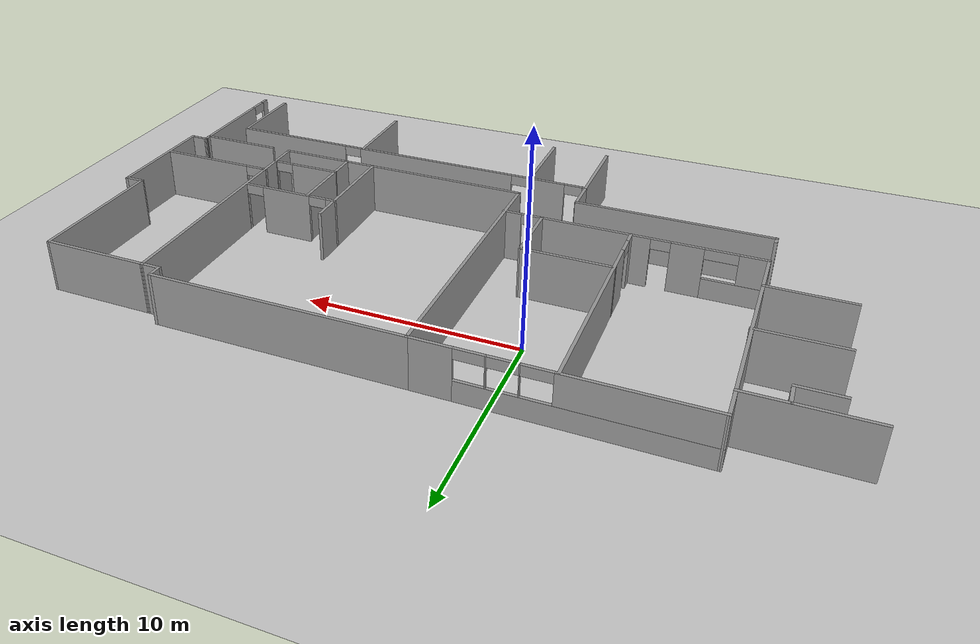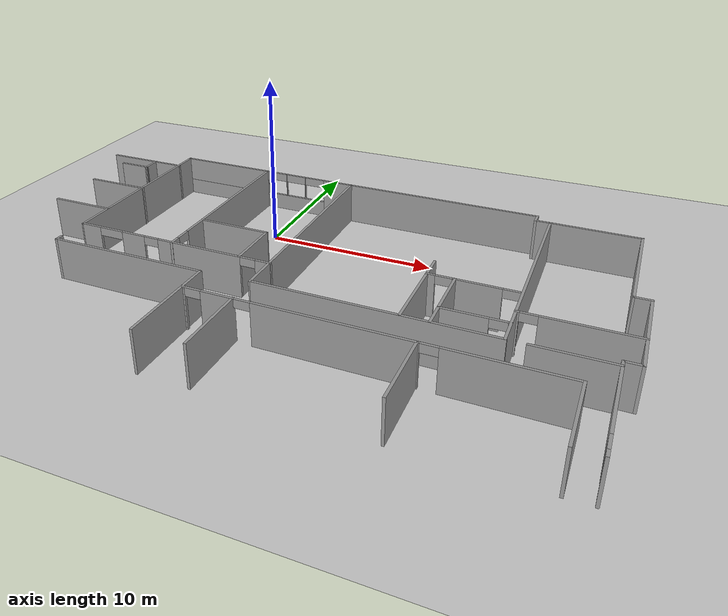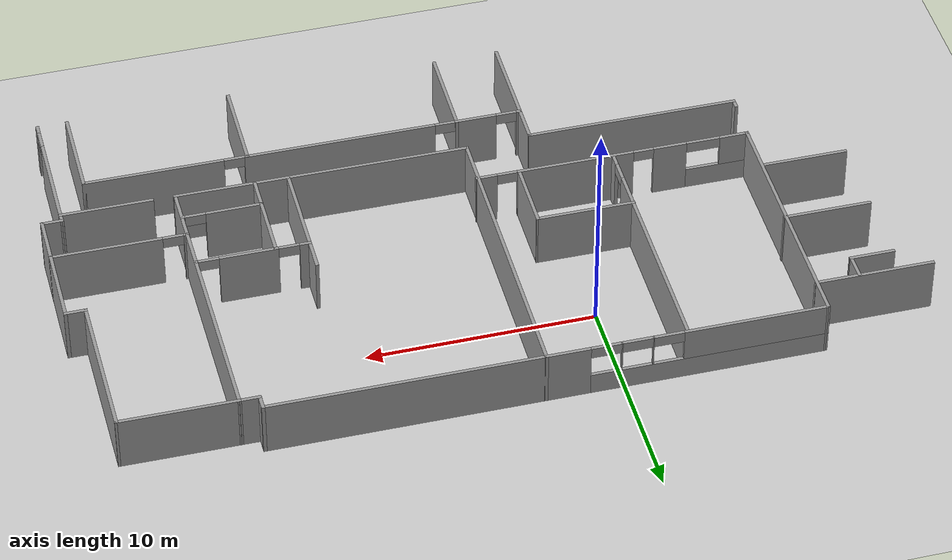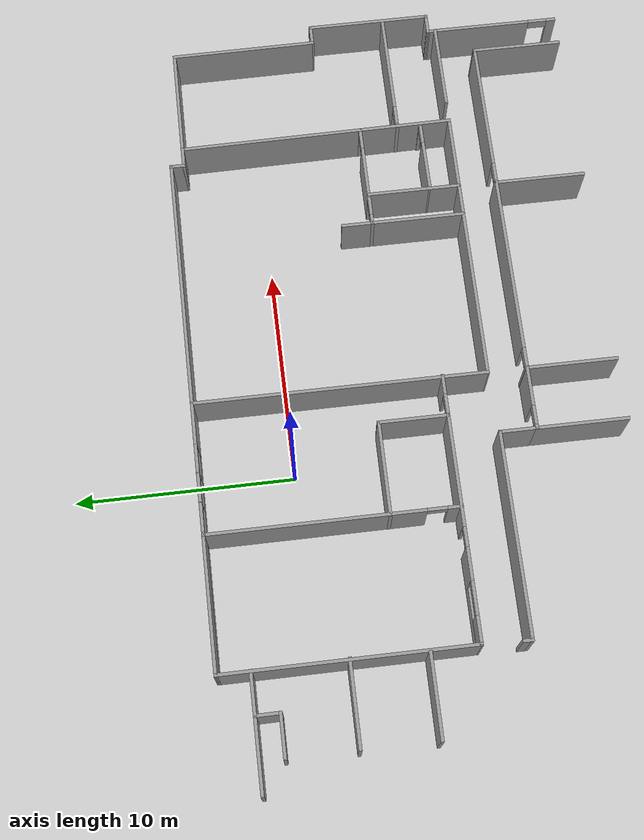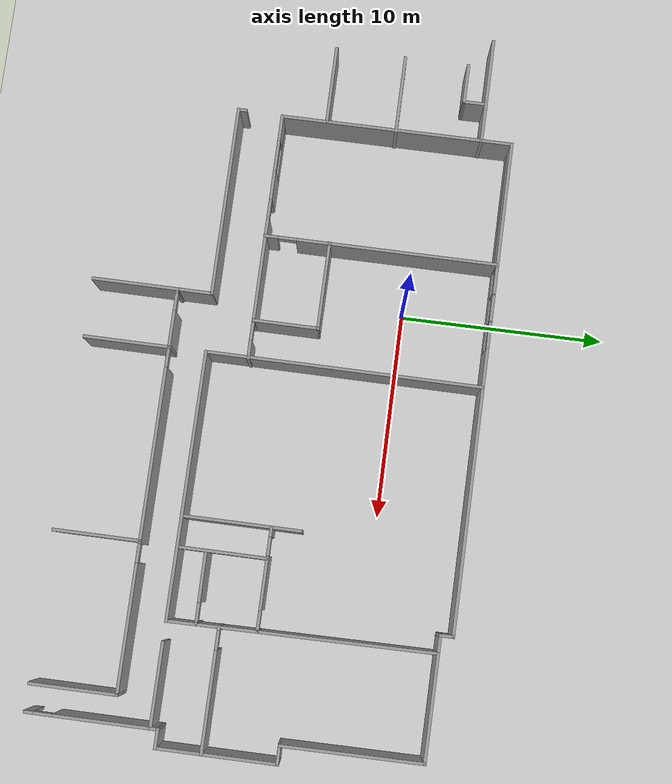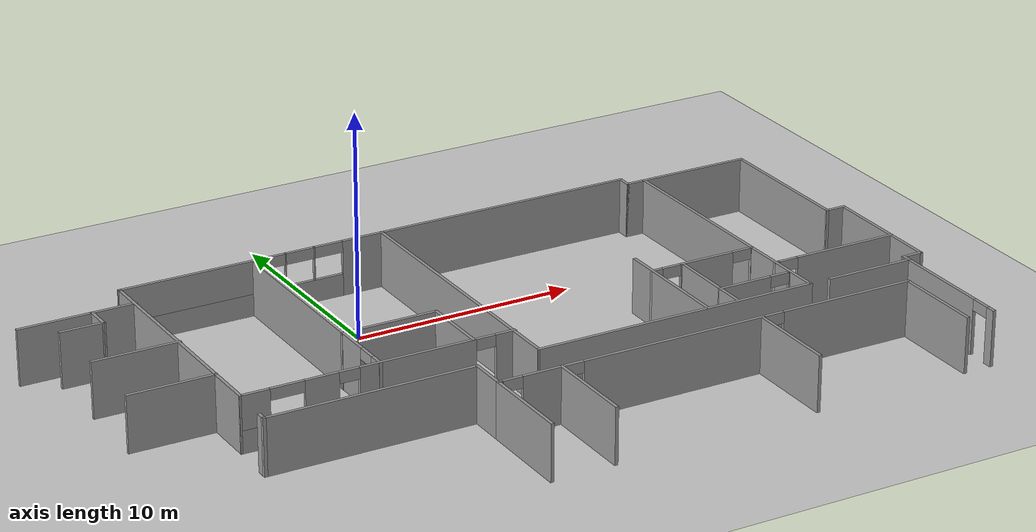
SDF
<sdf version="1.7">
 <world name="default">
  <model name="ground_plane">
   <static>1</static>
   <link name="link">
    <collision name="collision">
     <geometry><plane><normal>0 0 1</normal><size>100 100</size></plane></geometry>
     <surface><friction><ode><mu>100</mu><mu2>50</mu2></ode></friction></surface>
    </collision>
    <visual name="visual">
     <cast_shadows>0</cast_shadows>
     <geometry><plane><normal>0 0 1</normal><size>100 100</size></plane></geometry>
     <material>
      <script><uri>file://media/materials/scripts/gazebo.material</uri><name>Gazebo/Grey</name></script>
     </material>
    </visual>
   </link>
  </model>
  <model name="4th_floor_full">
   <pose>-18.2329 -5.23028 0 0 -0 3.13626</pose>
   <link name="Wall_1">
    <collision name="Wall_1_Collision">
     <geometry><box><size>13.5 0.15 2.5</size></box></geometry>
     <pose>0 0 1.25 0 -0 0</pose>
    </collision>
    <visual name="Wall_1_Visual">
     <pose>0 0 1.25 0 -0 0</pose>
     <geometry><box><size>13.5 0.15 2.5</size></box></geometry>
     <material>
      <script><uri>file://media/materials/scripts/gazebo.material</uri><name>Gazebo/Grey</name></script>
      <ambient>1 1 1 1</ambient>
     </material>
     <meta><layer>0</layer></meta>
    </visual>
    <pose>-21.539 -2.89994 0 0 -0 -1.5708</pose>
   </link>
   <link name="Wall_10">
    <pose>-15.5141 -3.90886 0 0 -0 -1.56844</pose>
    <visual name="Wall_10_Visual_0">
     <pose>-5.38184 0 1.25 0 -0 0</pose>
     <geometry><box><size>0.691437 0.15 2.5</size></box></geometry>
     <material>
      <script><uri>file://media/materials/scripts/gazebo.material</uri><name>Gazebo/Grey</name></script>
      <ambient>1 1 1 1</ambient>
     </material>
     <meta><layer>0</layer></meta>
    </visual>
    <collision name="Wall_10_Collision_0">
     <geometry><box><size>0.691437 0.15 2.5</size></box></geometry>
     <pose>-5.38184 0 1.25 0 -0 0</pose>
    </collision>
    <visual name="Wall_10_Visual_1">
     <pose>0.795718 0 1.25 0 -0 0</pose>
     <geometry><box><size>9.86368 0.15 2.5</size></box></geometry>
     <material>
      <script><uri>file://media/materials/scripts/gazebo.material</uri><name>Gazebo/Grey</name></script>
      <ambient>1 1 1 1</ambient>
     </material>
     <meta><layer>0</layer></meta>
    </visual>
    <collision name="Wall_10_Collision_1">
     <geometry><box><size>9.86368 0.15 2.5</size></box></geometry>
     <pose>0.795718 0 1.25 0 -0 0</pose>
    </collision>
    <visual name="Wall_10_Visual_2">
     <pose>-4.58612 0 2.25 0 -0 0</pose>
     <geometry><box><size>0.9 0.15 0.5</size></box></geometry>
     <material>
      <script><uri>file://media/materials/scripts/gazebo.material</uri><name>Gazebo/Grey</name></script>
      <ambient>1 1 1 1</ambient>
     </material>
     <meta><layer>0</layer></meta>
    </visual>
    <collision name="Wall_10_Collision_2">
     <geometry><box><size>0.9 0.15 0.5</size></box></geometry>
     <pose>-4.58612 0 2.25 0 -0 0</pose>
    </collision>
   </link>
   <link name="Wall_115">
    <pose>-39.3473 6.73743 0 0 -0 1.5708</pose>
    <visual name="Wall_115_Visual_0">
     <pose>-0.669517 0 1.25 0 -0 0</pose>
     <geometry><box><size>4.66097 0.15 2.5</size></box></geometry>
     <material>
      <script><uri>file://media/materials/scripts/gazebo.material</uri><name>Gazebo/Grey</name></script>
      <ambient>1 1 1 1</ambient>
     </material>
     <meta><layer>0</layer></meta>
    </visual>
    <collision name="Wall_115_Collision_0">
     <geometry><box><size>4.66097 0.15 2.5</size></box></geometry>
     <pose>-0.669517 0 1.25 0 -0 0</pose>
    </collision>
    <visual name="Wall_115_Visual_1">
     <pose>2.78048 0 1.25 0 -0 0</pose>
     <geometry><box><size>0.439034 0.15 2.5</size></box></geometry>
     <material>
      <script><uri>file://media/materials/scripts/gazebo.material</uri><name>Gazebo/Grey</name></script>
      <ambient>1 1 1 1</ambient>
     </material>
     <meta><layer>0</layer></meta>
    </visual>
    <collision name="Wall_115_Collision_1">
     <geometry><box><size>0.439034 0.15 2.5</size></box></geometry>
     <pose>2.78048 0 1.25 0 -0 0</pose>
    </collision>
    <visual name="Wall_115_Visual_2">
     <pose>2.11097 0 2.25 0 -0 0</pose>
     <geometry><box><size>0.9 0.15 0.5</size></box></geometry>
     <material>
      <script><uri>file://media/materials/scripts/gazebo.material</uri><name>Gazebo/Grey</name></script>
      <ambient>1 1 1 1</ambient>
     </material>
     <meta><layer>0</layer></meta>
    </visual>
    <collision name="Wall_115_Collision_2">
     <geometry><box><size>0.9 0.15 0.5</size></box></geometry>
     <pose>2.11097 0 2.25 0 -0 0</pose>
    </collision>
   </link>
   <link name="Wall_133">
    <collision name="Wall_133_Collision">
     <geometry><box><size>4.25 0.15 2.5</size></box></geometry>
     <pose>0 0 1.25 0 -0 0</pose>
    </collision>
    <visual name="Wall_133_Visual">
     <pose>0 0 1.25 0 -0 0</pose>
     <geometry><box><size>4.25 0.15 2.5</size></box></geometry>
     <material>
      <script><uri>file://media/materials/scripts/gazebo.material</uri><name>Gazebo/Grey</name></script>
      <ambient>1 1 1 1</ambient>
     </material>
     <meta><layer>0</layer></meta>
    </visual>
    <pose>-38.0412 7.62065 0 0 -0 -1.5708</pose>
   </link>
   <link name="Wall_134">
    <pose>-28.3662 5.57065 0 0 -0 0</pose>
    <visual name="Wall_134_Visual_0">
     <pose>-6.64062 0 1.25 0 -0 0</pose>
     <geometry><box><size>6.21875 0.15 2.5</size></box></geometry>
     <material>
      <script><uri>file://media/materials/scripts/gazebo.material</uri><name>Gazebo/Grey</name></script>
      <ambient>1 1 1 1</ambient>
     </material>
     <meta><layer>0</layer></meta>
    </visual>
    <collision name="Wall_134_Collision_0">
     <geometry><box><size>6.21875 0.15 2.5</size></box></geometry>
     <pose>-6.64062 0 1.25 0 -0 0</pose>
    </collision>
    <visual name="Wall_134_Visual_1">
     <pose>1.60609 0 1.25 0 -0 0</pose>
     <geometry><box><size>8.47467 0.15 2.5</size></box></geometry>
     <material>
      <script><uri>file://media/materials/scripts/gazebo.material</uri><name>Gazebo/Grey</name></script>
      <ambient>1 1 1 1</ambient>
     </material>
     <meta><layer>0</layer></meta>
    </visual>
    <collision name="Wall_134_Collision_1">
     <geometry><box><size>8.47467 0.15 2.5</size></box></geometry>
     <pose>1.60609 0 1.25 0 -0 0</pose>
    </collision>
    <visual name="Wall_134_Visual_2">
     <pose>7.67435 0 1.25 0 -0 0</pose>
     <geometry><box><size>1.86184 0.15 2.5</size></box></geometry>
     <material>
      <script><uri>file://media/materials/scripts/gazebo.material</uri><name>Gazebo/Grey</name></script>
      <ambient>1 1 1 1</ambient>
     </material>
     <meta><layer>0</layer></meta>
    </visual>
    <collision name="Wall_134_Collision_2">
     <geometry><box><size>1.86184 0.15 2.5</size></box></geometry>
     <pose>7.67435 0 1.25 0 -0 0</pose>
    </collision>
    <visual name="Wall_134_Visual_3">
     <pose>9.62763 0 1.25 0 -0 0</pose>
     <geometry><box><size>0.244731 0.15 2.5</size></box></geometry>
     <material>
      <script><uri>file://media/materials/scripts/gazebo.material</uri><name>Gazebo/Grey</name></script>
      <ambient>1 1 1 1</ambient>
     </material>
     <meta><layer>0</layer></meta>
    </visual>
    <collision name="Wall_134_Collision_3">
     <geometry><box><size>0.244731 0.15 2.5</size></box></geometry>
     <pose>9.62763 0 1.25 0 -0 0</pose>
    </collision>
    <visual name="Wall_134_Visual_4">
     <pose>-3.08125 0 2.25 0 -0 0</pose>
     <geometry><box><size>0.9 0.15 0.5</size></box></geometry>
     <material>
      <script><uri>file://media/materials/scripts/gazebo.material</uri><name>Gazebo/Grey</name></script>
      <ambient>1 1 1 1</ambient>
     </material>
     <meta><layer>0</layer></meta>
    </visual>
    <collision name="Wall_134_Collision_4">
     <geometry><box><size>0.9 0.15 0.5</size></box></geometry>
     <pose>-3.08125 0 2.25 0 -0 0</pose>
    </collision>
    <visual name="Wall_134_Visual_5">
     <pose>6.29343 0 2.25 0 -0 0</pose>
     <geometry><box><size>0.9 0.15 0.5</size></box></geometry>
     <material>
      <script><uri>file://media/materials/scripts/gazebo.material</uri><name>Gazebo/Grey</name></script>
      <ambient>1 1 1 1</ambient>
     </material>
     <meta><layer>0</layer></meta>
    </visual>
    <collision name="Wall_134_Collision_5">
     <geometry><box><size>0.9 0.15 0.5</size></box></geometry>
     <pose>6.29343 0 2.25 0 -0 0</pose>
    </collision>
    <visual name="Wall_134_Visual_6">
     <pose>9.05527 0 2.25 0 -0 0</pose>
     <geometry><box><size>0.9 0.15 0.5</size></box></geometry>
     <material>
      <script><uri>file://media/materials/scripts/gazebo.material</uri><name>Gazebo/Grey</name></script>
      <ambient>1 1 1 1</ambient>
     </material>
     <meta><layer>0</layer></meta>
    </visual>
    <collision name="Wall_134_Collision_6">
     <geometry><box><size>0.9 0.15 0.5</size></box></geometry>
     <pose>9.05527 0 2.25 0 -0 0</pose>
    </collision>
   </link>
   <link name="Wall_135">
    <collision name="Wall_135_Collision">
     <geometry><box><size>4.25 0.15 2.5</size></box></geometry>
     <pose>0 0 1.25 0 -0 0</pose>
    </collision>
    <visual name="Wall_135_Visual">
     <pose>0 0 1.25 0 -0 0</pose>
     <geometry><box><size>4.25 0.15 2.5</size></box></geometry>
     <material>
      <script><uri>file://media/materials/scripts/gazebo.material</uri><name>Gazebo/Grey</name></script>
      <ambient>1 1 1 1</ambient>
     </material>
     <meta><layer>0</layer></meta>
    </visual>
    <pose>-18.6912 7.62065 0 0 -0 1.5708</pose>
   </link>
   <link name="Wall_137">
    <collision name="Wall_137_Collision">
     <geometry><box><size>4.25 0.15 2.5</size></box></geometry>
     <pose>0 0 1.25 0 -0 0</pose>
    </collision>
    <visual name="Wall_137_Visual">
     <pose>0 0 1.25 0 -0 0</pose>
     <geometry><box><size>4.25 0.15 2.5</size></box></geometry>
     <material>
      <script><uri>file://media/materials/scripts/gazebo.material</uri><name>Gazebo/Grey</name></script>
      <ambient>1 1 1 1</ambient>
     </material>
     <meta><layer>0</layer></meta>
    </visual>
    <pose>-30.8702 7.63814 0 0 -0 -1.5708</pose>
   </link>
   <link name="Wall_139">
    <collision name="Wall_139_Collision">
     <geometry><box><size>4.25 0.15 2.5</size></box></geometry>
     <pose>0 0 1.25 0 -0 0</pose>
    </collision>
    <visual name="Wall_139_Visual">
     <pose>0 0 1.25 0 -0 0</pose>
     <geometry><box><size>4.25 0.15 2.5</size></box></geometry>
     <material>
      <script><uri>file://media/materials/scripts/gazebo.material</uri><name>Gazebo/Grey</name></script>
      <ambient>1 1 1 1</ambient>
     </material>
     <meta><layer>0</layer></meta>
    </visual>
    <pose>-21.548 7.60316 0 0 -0 -1.5708</pose>
   </link>
   <link name="Wall_14">
    <collision name="Wall_14_Collision">
     <geometry><box><size>3.25 0.15 2.5</size></box></geometry>
     <pose>0 0 1.25 0 -0 0</pose>
    </collision>
    <visual name="Wall_14_Visual">
     <pose>0 0 1.25 0 -0 0</pose>
     <geometry><box><size>3.25 0.15 2.5</size></box></geometry>
     <material>
      <script><uri>file://media/materials/scripts/gazebo.material</uri><name>Gazebo/Grey</name></script>
      <ambient>1 1 1 1</ambient>
     </material>
     <meta><layer>0</layer></meta>
    </visual>
    <pose>-19.7261 0.162934 0 0 -0 -1.5708</pose>
   </link>
   <link name="Wall_15">
    <collision name="Wall_15_Collision">
     <geometry><box><size>4.37001 0.15 2.5</size></box></geometry>
     <pose>0 0 1.25 0 -0 0</pose>
    </collision>
    <visual name="Wall_15_Visual">
     <pose>0 0 1.25 0 -0 0</pose>
     <geometry><box><size>4.37001 0.15 2.5</size></box></geometry>
     <material>
      <script><uri>file://media/materials/scripts/gazebo.material</uri><name>Gazebo/Grey</name></script>
      <ambient>1 1 1 1</ambient>
     </material>
     <meta><layer>0</layer></meta>
    </visual>
    <pose>-17.6161 -1.39207 0 0 -0 -0.00237</pose>
   </link>
   <link name="Wall_151">
    <collision name="Wall_151_Collision">
     <geometry><box><size>0.5 0.15 2.5</size></box></geometry>
     <pose>0 0 1.25 0 -0 0</pose>
    </collision>
    <visual name="Wall_151_Visual">
     <pose>0 0 1.25 0 -0 0</pose>
     <geometry><box><size>0.5 0.15 2.5</size></box></geometry>
     <material>
      <script><uri>file://media/materials/scripts/gazebo.material</uri><name>Gazebo/Grey</name></script>
      <ambient>1 1 1 1</ambient>
     </material>
     <meta><layer>0</layer></meta>
    </visual>
    <pose>-9.41775 3.73129 0 0 -0 1.5708</pose>
   </link>
   <link name="Wall_153">
    <collision name="Wall_153_Collision">
     <geometry><box><size>9.4 0.15 2.5</size></box></geometry>
     <pose>0 0 1.25 0 -0 0</pose>
    </collision>
    <visual name="Wall_153_Visual">
     <pose>0 0 1.25 0 -0 0</pose>
     <geometry><box><size>9.4 0.15 2.5</size></box></geometry>
     <material>
      <script><uri>file://media/materials/scripts/gazebo.material</uri><name>Gazebo/Grey</name></script>
      <ambient>1 1 1 1</ambient>
     </material>
     <meta><layer>0</layer></meta>
    </visual>
    <pose>-14.0427 3.90629 0 0 -0 3.14159</pose>
   </link>
   <link name="Wall_155">
    <collision name="Wall_155_Collision">
     <geometry><box><size>1.8 0.15 2.5</size></box></geometry>
     <pose>0 0 1.25 0 -0 0</pose>
    </collision>
    <visual name="Wall_155_Visual">
     <pose>0 0 1.25 0 -0 0</pose>
     <geometry><box><size>1.8 0.15 2.5</size></box></geometry>
     <material>
      <script><uri>file://media/materials/scripts/gazebo.material</uri><name>Gazebo/Grey</name></script>
      <ambient>1 1 1 1</ambient>
     </material>
     <meta><layer>0</layer></meta>
    </visual>
    <pose>-18.6912 4.74565 0 0 -0 -1.5708</pose>
   </link>
   <link name="Wall_17">
    <collision name="Wall_17_Collision">
     <geometry><box><size>12 0.15 2.5</size></box></geometry>
     <pose>0 0 1.25 0 -0 0</pose>
    </collision>
    <visual name="Wall_17_Visual">
     <pose>0 0 1.25 0 -0 0</pose>
     <geometry><box><size>12 0.15 2.5</size></box></geometry>
     <material>
      <script><uri>file://media/materials/scripts/gazebo.material</uri><name>Gazebo/Grey</name></script>
      <ambient>1 1 1 1</ambient>
     </material>
     <meta><layer>0</layer></meta>
    </visual>
    <pose>-27.464 -9.57493 0 0 -0 3.14159</pose>
   </link>
   <link name="Wall_18">
    <collision name="Wall_18_Collision">
     <geometry><box><size>0.75 0.15 2.5</size></box></geometry>
     <pose>0 0 1.25 0 -0 0</pose>
    </collision>
    <visual name="Wall_18_Visual">
     <pose>0 0 1.25 0 -0 0</pose>
     <geometry><box><size>0.75 0.15 2.5</size></box></geometry>
     <material>
      <script><uri>file://media/materials/scripts/gazebo.material</uri><name>Gazebo/Grey</name></script>
      <ambient>1 1 1 1</ambient>
     </material>
     <meta><layer>0</layer></meta>
    </visual>
    <pose>-33.389 -9.27494 0 0 -0 1.5708</pose>
   </link>
   <link name="Wall_19">
    <collision name="Wall_19_Collision">
     <geometry><box><size>1 0.15 2.5</size></box></geometry>
     <pose>0 0 1.25 0 -0 0</pose>
    </collision>
    <visual name="Wall_19_Visual">
     <pose>0 0 1.25 0 -0 0</pose>
     <geometry><box><size>1 0.15 2.5</size></box></geometry>
     <material>
      <script><uri>file://media/materials/scripts/gazebo.material</uri><name>Gazebo/Grey</name></script>
      <ambient>1 1 1 1</ambient>
     </material>
     <meta><layer>0</layer></meta>
    </visual>
    <pose>-33.814 -8.97494 0 0 -0 3.14159</pose>
   </link>
   <link name="Wall_21">
    <collision name="Wall_21_Collision">
     <geometry><box><size>12.9196 0.15 2.5</size></box></geometry>
     <pose>0 0 1.25 0 -0 0</pose>
    </collision>
    <visual name="Wall_21_Visual">
     <pose>0 0 1.25 0 -0 0</pose>
     <geometry><box><size>12.9196 0.15 2.5</size></box></geometry>
     <material>
      <script><uri>file://media/materials/scripts/gazebo.material</uri><name>Gazebo/Grey</name></script>
      <ambient>1 1 1 1</ambient>
     </material>
     <meta><layer>0</layer></meta>
    </visual>
    <pose>-34.311 -2.5905 0 0 -0 1.58207</pose>
   </link>
   <link name="Wall_24">
    <collision name="Wall_24_Collision">
     <geometry><box><size>13 0.15 2.5</size></box></geometry>
     <pose>0 0 1.25 0 -0 0</pose>
    </collision>
    <visual name="Wall_24_Visual">
     <pose>0 0 1.25 0 -0 0</pose>
     <geometry><box><size>13 0.15 2.5</size></box></geometry>
     <material>
      <script><uri>file://media/materials/scripts/gazebo.material</uri><name>Gazebo/Grey</name></script>
      <ambient>1 1 1 1</ambient>
     </material>
     <meta><layer>0</layer></meta>
    </visual>
    <pose>-27.964 3.78836 0 0 -0 3.13952</pose>
   </link>
   <link name="Wall_26">
    <collision name="Wall_26_Collision">
     <geometry><box><size>5.75 0.15 2.5</size></box></geometry>
     <pose>0 0 1.25 0 -0 0</pose>
    </collision>
    <visual name="Wall_26_Visual">
     <pose>0 0 1.25 0 -0 0</pose>
     <geometry><box><size>5.75 0.15 2.5</size></box></geometry>
     <material>
      <script><uri>file://media/materials/scripts/gazebo.material</uri><name>Gazebo/Grey</name></script>
      <ambient>1 1 1 1</ambient>
     </material>
     <meta><layer>0</layer></meta>
    </visual>
    <pose>-29.4417 0.940476 0 0 -0 -1.5708</pose>
   </link>
   <link name="Wall_28">
    <pose>-31.8667 -0.478299 0 0 -0 3.14159</pose>
    <visual name="Wall_28_Visual_0">
     <pose>-2.24009 0 1.25 0 -0 0</pose>
     <geometry><box><size>0.519822 0.15 2.5</size></box></geometry>
     <material>
      <script><uri>file://media/materials/scripts/gazebo.material</uri><name>Gazebo/Grey</name></script>
      <ambient>1 1 1 1</ambient>
     </material>
     <meta><layer>0</layer></meta>
    </visual>
    <collision name="Wall_28_Collision_0">
     <geometry><box><size>0.519822 0.15 2.5</size></box></geometry>
     <pose>-2.24009 0 1.25 0 -0 0</pose>
    </collision>
    <visual name="Wall_28_Visual_1">
     <pose>0.200571 0 1.25 0 -0 0</pose>
     <geometry><box><size>2.5615 0.15 2.5</size></box></geometry>
     <material>
      <script><uri>file://media/materials/scripts/gazebo.material</uri><name>Gazebo/Grey</name></script>
      <ambient>1 1 1 1</ambient>
     </material>
     <meta><layer>0</layer></meta>
    </visual>
    <collision name="Wall_28_Collision_1">
     <geometry><box><size>2.5615 0.15 2.5</size></box></geometry>
     <pose>0.200571 0 1.25 0 -0 0</pose>
    </collision>
    <visual name="Wall_28_Visual_2">
     <pose>2.44066 0 1.25 0 -0 0</pose>
     <geometry><box><size>0.11868 0.15 2.5</size></box></geometry>
     <material>
      <script><uri>file://media/materials/scripts/gazebo.material</uri><name>Gazebo/Grey</name></script>
      <ambient>1 1 1 1</ambient>
     </material>
     <meta><layer>0</layer></meta>
    </visual>
    <collision name="Wall_28_Collision_2">
     <geometry><box><size>0.11868 0.15 2.5</size></box></geometry>
     <pose>2.44066 0 1.25 0 -0 0</pose>
    </collision>
    <visual name="Wall_28_Visual_3">
     <pose>-1.53018 0 2.25 0 -0 0</pose>
     <geometry><box><size>0.9 0.15 0.5</size></box></geometry>
     <material>
      <script><uri>file://media/materials/scripts/gazebo.material</uri><name>Gazebo/Grey</name></script>
      <ambient>1 1 1 1</ambient>
     </material>
     <meta><layer>0</layer></meta>
    </visual>
    <collision name="Wall_28_Collision_3">
     <geometry><box><size>0.9 0.15 0.5</size></box></geometry>
     <pose>-1.53018 0 2.25 0 -0 0</pose>
    </collision>
    <visual name="Wall_28_Visual_4">
     <pose>1.93132 0 2.25 0 -0 0</pose>
     <geometry><box><size>0.9 0.15 0.5</size></box></geometry>
     <material>
      <script><uri>file://media/materials/scripts/gazebo.material</uri><name>Gazebo/Grey</name></script>
      <ambient>1 1 1 1</ambient>
     </material>
     <meta><layer>0</layer></meta>
    </visual>
    <collision name="Wall_28_Collision_4">
     <geometry><box><size>0.9 0.15 0.5</size></box></geometry>
     <pose>1.93132 0 2.25 0 -0 0</pose>
    </collision>
   </link>
   <link name="Wall_3">
    <pose>-15.489 -9.57493 0 0 -0 0</pose>
    <visual name="Wall_3_Visual_0">
     <pose>-5.13864 0 1.25 0 -0 0</pose>
     <geometry><box><size>1.97271 0.15 2.5</size></box></geometry>
     <material>
      <script><uri>file://media/materials/scripts/gazebo.material</uri><name>Gazebo/Grey</name></script>
      <ambient>1 1 1 1</ambient>
     </material>
     <meta><layer>0</layer></meta>
    </visual>
    <collision name="Wall_3_Collision_0">
     <geometry><box><size>1.97271 0.15 2.5</size></box></geometry>
     <pose>-5.13864 0 1.25 0 -0 0</pose>
    </collision>
    <visual name="Wall_3_Visual_1">
     <pose>0.986356 0 0.5 0 -0 0</pose>
     <geometry><box><size>10.2773 0.15 1</size></box></geometry>
     <material>
      <script><uri>file://media/materials/scripts/gazebo.material</uri><name>Gazebo/Grey</name></script>
      <ambient>1 1 1 1</ambient>
     </material>
     <meta><layer>0</layer></meta>
    </visual>
    <collision name="Wall_3_Collision_1">
     <geometry><box><size>10.2773 0.15 1</size></box></geometry>
     <pose>0.986356 0 0.5 0 -0 0</pose>
    </collision>
    <visual name="Wall_3_Visual_2">
     <pose>-2.82748 0 1.75 0 -0 0</pose>
     <geometry><box><size>0.049615 0.15 1.5</size></box></geometry>
     <material>
      <script><uri>file://media/materials/scripts/gazebo.material</uri><name>Gazebo/Grey</name></script>
      <ambient>1 1 1 1</ambient>
     </material>
     <meta><layer>0</layer></meta>
    </visual>
    <collision name="Wall_3_Collision_2">
     <geometry><box><size>0.049615 0.15 1.5</size></box></geometry>
     <pose>-2.82748 0 1.75 0 -0 0</pose>
    </collision>
    <visual name="Wall_3_Visual_3">
     <pose>-1.48163 0 1.75 0 -0 0</pose>
     <geometry><box><size>0.042094 0.15 1.5</size></box></geometry>
     <material>
      <script><uri>file://media/materials/scripts/gazebo.material</uri><name>Gazebo/Grey</name></script>
      <ambient>1 1 1 1</ambient>
     </material>
     <meta><layer>0</layer></meta>
    </visual>
    <collision name="Wall_3_Collision_3">
     <geometry><box><size>0.042094 0.15 1.5</size></box></geometry>
     <pose>-1.48163 0 1.75 0 -0 0</pose>
    </collision>
    <visual name="Wall_3_Visual_4">
     <pose>2.98221 0 1.75 0 -0 0</pose>
     <geometry><box><size>6.28558 0.15 1.5</size></box></geometry>
     <material>
      <script><uri>file://media/materials/scripts/gazebo.material</uri><name>Gazebo/Grey</name></script>
      <ambient>1 1 1 1</ambient>
     </material>
     <meta><layer>0</layer></meta>
    </visual>
    <collision name="Wall_3_Collision_4">
     <geometry><box><size>6.28558 0.15 1.5</size></box></geometry>
     <pose>2.98221 0 1.75 0 -0 0</pose>
    </collision>
    <visual name="Wall_3_Visual_5">
     <pose>-3.50229 0 2.25 0 -0 0</pose>
     <geometry><box><size>1.3 0.15 0.5</size></box></geometry>
     <material>
      <script><uri>file://media/materials/scripts/gazebo.material</uri><name>Gazebo/Grey</name></script>
      <ambient>1 1 1 1</ambient>
     </material>
     <meta><layer>0</layer></meta>
    </visual>
    <collision name="Wall_3_Collision_5">
     <geometry><box><size>1.3 0.15 0.5</size></box></geometry>
     <pose>-3.50229 0 2.25 0 -0 0</pose>
    </collision>
    <visual name="Wall_3_Visual_6">
     <pose>-2.15267 0 2.25 0 -0 0</pose>
     <geometry><box><size>1.3 0.15 0.5</size></box></geometry>
     <material>
      <script><uri>file://media/materials/scripts/gazebo.material</uri><name>Gazebo/Grey</name></script>
      <ambient>1 1 1 1</ambient>
     </material>
     <meta><layer>0</layer></meta>
    </visual>
    <collision name="Wall_3_Collision_6">
     <geometry><box><size>1.3 0.15 0.5</size></box></geometry>
     <pose>-2.15267 0 2.25 0 -0 0</pose>
    </collision>
    <visual name="Wall_3_Visual_7">
     <pose>-0.810579 0 2.25 0 -0 0</pose>
     <geometry><box><size>1.3 0.15 0.5</size></box></geometry>
     <material>
      <script><uri>file://media/materials/scripts/gazebo.material</uri><name>Gazebo/Grey</name></script>
      <ambient>1 1 1 1</ambient>
     </material>
     <meta><layer>0</layer></meta>
    </visual>
    <collision name="Wall_3_Collision_7">
     <geometry><box><size>1.3 0.15 0.5</size></box></geometry>
     <pose>-0.810579 0 2.25 0 -0 0</pose>
    </collision>
   </link>
   <link name="Wall_31">
    <collision name="Wall_31_Collision">
     <geometry><box><size>4.359 0.15 2.5</size></box></geometry>
     <pose>0 0 1.25 0 -0 0</pose>
    </collision>
    <visual name="Wall_31_Visual">
     <pose>0 0 1.25 0 -0 0</pose>
     <geometry><box><size>4.359 0.15 2.5</size></box></geometry>
     <material>
      <script><uri>file://media/materials/scripts/gazebo.material</uri><name>Gazebo/Grey</name></script>
      <ambient>1 1 1 1</ambient>
     </material>
     <meta><layer>0</layer></meta>
    </visual>
    <pose>-30.9115 1.65388 0 0 -0 1.5708</pose>
   </link>
   <link name="Wall_33">
    <pose>-32.6365 2.41288 0 0 -0 -3.13493</pose>
    <visual name="Wall_33_Visual_0">
     <pose>-0.544858 0 1.25 0 -0 0</pose>
     <geometry><box><size>2.51036 0.15 2.5</size></box></geometry>
     <material>
      <script><uri>file://media/materials/scripts/gazebo.material</uri><name>Gazebo/Grey</name></script>
      <ambient>1 1 1 1</ambient>
     </material>
     <meta><layer>0</layer></meta>
    </visual>
    <collision name="Wall_33_Collision_0">
     <geometry><box><size>2.51036 0.15 2.5</size></box></geometry>
     <pose>-0.544858 0 1.25 0 -0 0</pose>
    </collision>
    <visual name="Wall_33_Visual_1">
     <pose>1.70518 0 1.25 0 -0 0</pose>
     <geometry><box><size>0.189715 0.15 2.5</size></box></geometry>
     <material>
      <script><uri>file://media/materials/scripts/gazebo.material</uri><name>Gazebo/Grey</name></script>
      <ambient>1 1 1 1</ambient>
     </material>
     <meta><layer>0</layer></meta>
    </visual>
    <collision name="Wall_33_Collision_1">
     <geometry><box><size>0.189715 0.15 2.5</size></box></geometry>
     <pose>1.70518 0 1.25 0 -0 0</pose>
    </collision>
    <visual name="Wall_33_Visual_2">
     <pose>1.16032 0 2.25 0 -0 0</pose>
     <geometry><box><size>0.9 0.15 0.5</size></box></geometry>
     <material>
      <script><uri>file://media/materials/scripts/gazebo.material</uri><name>Gazebo/Grey</name></script>
      <ambient>1 1 1 1</ambient>
     </material>
     <meta><layer>0</layer></meta>
    </visual>
    <collision name="Wall_33_Collision_2">
     <geometry><box><size>0.9 0.15 0.5</size></box></geometry>
     <pose>1.16032 0 2.25 0 -0 0</pose>
    </collision>
   </link>
   <link name="Wall_35">
    <collision name="Wall_35_Collision">
     <geometry><box><size>5.2 0.15 2.5</size></box></geometry>
     <pose>0 0 1.25 0 -0 0</pose>
    </collision>
    <visual name="Wall_35_Visual">
     <pose>0 0 1.25 0 -0 0</pose>
     <geometry><box><size>5.2 0.15 2.5</size></box></geometry>
     <material>
      <script><uri>file://media/materials/scripts/gazebo.material</uri><name>Gazebo/Grey</name></script>
      <ambient>1 1 1 1</ambient>
     </material>
     <meta><layer>0</layer></meta>
    </visual>
    <pose>-36.764 -8.96566 0 0 -0 3.13792</pose>
   </link>
   <link name="Wall_40">
    <collision name="Wall_40_Collision">
     <geometry><box><size>6.88713 0.15 2.5</size></box></geometry>
     <pose>0 0 1.25 0 -0 0</pose>
    </collision>
    <visual name="Wall_40_Visual">
     <pose>0 0 1.25 0 -0 0</pose>
     <geometry><box><size>6.88713 0.15 2.5</size></box></geometry>
     <material>
      <script><uri>file://media/materials/scripts/gazebo.material</uri><name>Gazebo/Grey</name></script>
      <ambient>1 1 1 1</ambient>
     </material>
     <meta><layer>0</layer></meta>
    </visual>
    <pose>-39.3122 -5.58825 0 0 -0 1.57769</pose>
   </link>
   <link name="Wall_41">
    <collision name="Wall_41_Collision">
     <geometry><box><size>1 0.15 2.5</size></box></geometry>
     <pose>0 0 1.25 0 -0 0</pose>
    </collision>
    <visual name="Wall_41_Visual">
     <pose>0 0 1.25 0 -0 0</pose>
     <geometry><box><size>1 0.15 2.5</size></box></geometry>
     <material>
      <script><uri>file://media/materials/scripts/gazebo.material</uri><name>Gazebo/Grey</name></script>
      <ambient>1 1 1 1</ambient>
     </material>
     <meta><layer>0</layer></meta>
    </visual>
    <pose>-39.7604 -2.22011 0 0 -0 3.14159</pose>
   </link>
   <link name="Wall_43">
    <collision name="Wall_43_Collision">
     <geometry><box><size>5.83342 0.15 2.5</size></box></geometry>
     <pose>0 0 1.25 0 -0 0</pose>
    </collision>
    <visual name="Wall_43_Visual">
     <pose>0 0 1.25 0 -0 0</pose>
     <geometry><box><size>5.83342 0.15 2.5</size></box></geometry>
     <material>
      <script><uri>file://media/materials/scripts/gazebo.material</uri><name>Gazebo/Grey</name></script>
      <ambient>1 1 1 1</ambient>
     </material>
     <meta><layer>0</layer></meta>
    </visual>
    <pose>-40.1883 0.621187 0 0 -0 1.5718</pose>
   </link>
   <link name="Wall_44">
    <collision name="Wall_44_Collision">
     <geometry><box><size>1 0.15 2.5</size></box></geometry>
     <pose>0 0 1.25 0 -0 0</pose>
    </collision>
    <visual name="Wall_44_Visual">
     <pose>0 0 1.25 0 -0 0</pose>
     <geometry><box><size>1 0.15 2.5</size></box></geometry>
     <material>
      <script><uri>file://media/materials/scripts/gazebo.material</uri><name>Gazebo/Grey</name></script>
      <ambient>1 1 1 1</ambient>
     </material>
     <meta><layer>0</layer></meta>
    </visual>
    <pose>-39.7662 3.46248 0 0 -0 0</pose>
   </link>
   <link name="Wall_47">
    <collision name="Wall_47_Collision">
     <geometry><box><size>0.5 0.15 2.5</size></box></geometry>
     <pose>0 0 1.25 0 -0 0</pose>
    </collision>
    <visual name="Wall_47_Visual">
     <pose>0 0 1.25 0 -0 0</pose>
     <geometry><box><size>0.5 0.15 2.5</size></box></geometry>
     <material>
      <script><uri>file://media/materials/scripts/gazebo.material</uri><name>Gazebo/Grey</name></script>
      <ambient>1 1 1 1</ambient>
     </material>
     <meta><layer>0</layer></meta>
    </visual>
    <pose>-39.3442 3.63746 0 0 -0 1.58829</pose>
   </link>
   <link name="Wall_49">
    <collision name="Wall_49_Collision">
     <geometry><box><size>4.1 0.15 2.5</size></box></geometry>
     <pose>0 0 1.25 0 -0 0</pose>
    </collision>
    <visual name="Wall_49_Visual">
     <pose>0 0 1.25 0 -0 0</pose>
     <geometry><box><size>4.1 0.15 2.5</size></box></geometry>
     <material>
      <script><uri>file://media/materials/scripts/gazebo.material</uri><name>Gazebo/Grey</name></script>
      <ambient>1 1 1 1</ambient>
     </material>
     <meta><layer>0</layer></meta>
    </visual>
    <pose>-37.3723 3.81243 0 0 -0 0</pose>
   </link>
   <link name="Wall_53">
    <pose>-37.2675 1.31425 0 0 -0 0</pose>
    <visual name="Wall_53_Visual_0">
     <pose>-0.5725 0 1.25 0 -0 0</pose>
     <geometry><box><size>4.855 0.15 2.5</size></box></geometry>
     <material>
      <script><uri>file://media/materials/scripts/gazebo.material</uri><name>Gazebo/Grey</name></script>
      <ambient>1 1 1 1</ambient>
     </material>
     <meta><layer>0</layer></meta>
    </visual>
    <collision name="Wall_53_Collision_0">
     <geometry><box><size>4.855 0.15 2.5</size></box></geometry>
     <pose>-0.5725 0 1.25 0 -0 0</pose>
    </collision>
    <visual name="Wall_53_Visual_1">
     <pose>2.8775 0 1.25 0 -0 0</pose>
     <geometry><box><size>0.245 0.15 2.5</size></box></geometry>
     <material>
      <script><uri>file://media/materials/scripts/gazebo.material</uri><name>Gazebo/Grey</name></script>
      <ambient>1 1 1 1</ambient>
     </material>
     <meta><layer>0</layer></meta>
    </visual>
    <collision name="Wall_53_Collision_1">
     <geometry><box><size>0.245 0.15 2.5</size></box></geometry>
     <pose>2.8775 0 1.25 0 -0 0</pose>
    </collision>
    <visual name="Wall_53_Visual_2">
     <pose>2.305 0 2.25 0 -0 0</pose>
     <geometry><box><size>0.9 0.15 0.5</size></box></geometry>
     <material>
      <script><uri>file://media/materials/scripts/gazebo.material</uri><name>Gazebo/Grey</name></script>
      <ambient>1 1 1 1</ambient>
     </material>
     <meta><layer>0</layer></meta>
    </visual>
    <collision name="Wall_53_Collision_2">
     <geometry><box><size>0.9 0.15 0.5</size></box></geometry>
     <pose>2.305 0 2.25 0 -0 0</pose>
    </collision>
   </link>
   <link name="Wall_55">
    <collision name="Wall_55_Collision">
     <geometry><box><size>5.25 0.15 2.5</size></box></geometry>
     <pose>0 0 1.25 0 -0 0</pose>
    </collision>
    <visual name="Wall_55_Visual">
     <pose>0 0 1.25 0 -0 0</pose>
     <geometry><box><size>5.25 0.15 2.5</size></box></geometry>
     <material>
      <script><uri>file://media/materials/scripts/gazebo.material</uri><name>Gazebo/Grey</name></script>
      <ambient>1 1 1 1</ambient>
     </material>
     <meta><layer>0</layer></meta>
    </visual>
    <pose>-6.90753 -8.08814 0 0 -0 0</pose>
   </link>
   <link name="Wall_57">
    <collision name="Wall_57_Collision">
     <geometry><box><size>3.9 0.15 2.5</size></box></geometry>
     <pose>0 0 1.25 0 -0 0</pose>
    </collision>
    <visual name="Wall_57_Visual">
     <pose>0 0 1.25 0 -0 0</pose>
     <geometry><box><size>3.9 0.15 2.5</size></box></geometry>
     <material>
      <script><uri>file://media/materials/scripts/gazebo.material</uri><name>Gazebo/Grey</name></script>
      <ambient>1 1 1 1</ambient>
     </material>
     <meta><layer>0</layer></meta>
    </visual>
    <pose>-7.59195 -0.457568 0 0 -0 0</pose>
   </link>
   <link name="Wall_6">
    <pose>-15.529 1.73247 0 0 -0 0</pose>
    <visual name="Wall_6_Visual_0">
     <pose>-5.65421 0 1.25 0 -0 0</pose>
     <geometry><box><size>0.941588 0.15 2.5</size></box></geometry>
     <material>
      <script><uri>file://media/materials/scripts/gazebo.material</uri><name>Gazebo/Grey</name></script>
      <ambient>1 1 1 1</ambient>
     </material>
     <meta><layer>0</layer></meta>
    </visual>
    <collision name="Wall_6_Collision_0">
     <geometry><box><size>0.941588 0.15 2.5</size></box></geometry>
     <pose>-5.65421 0 1.25 0 -0 0</pose>
    </collision>
    <visual name="Wall_6_Visual_1">
     <pose>-1.68523 0 1.25 0 -0 0</pose>
     <geometry><box><size>5.19637 0.15 2.5</size></box></geometry>
     <material>
      <script><uri>file://media/materials/scripts/gazebo.material</uri><name>Gazebo/Grey</name></script>
      <ambient>1 1 1 1</ambient>
     </material>
     <meta><layer>0</layer></meta>
    </visual>
    <collision name="Wall_6_Collision_1">
     <geometry><box><size>5.19637 0.15 2.5</size></box></geometry>
     <pose>-1.68523 0 1.25 0 -0 0</pose>
    </collision>
    <visual name="Wall_6_Visual_2">
     <pose>2.55893 0 1.25 0 -0 0</pose>
     <geometry><box><size>1.49195 0.15 2.5</size></box></geometry>
     <material>
      <script><uri>file://media/materials/scripts/gazebo.material</uri><name>Gazebo/Grey</name></script>
      <ambient>1 1 1 1</ambient>
     </material>
     <meta><layer>0</layer></meta>
    </visual>
    <collision name="Wall_6_Collision_2">
     <geometry><box><size>1.49195 0.15 2.5</size></box></geometry>
     <pose>2.55893 0 1.25 0 -0 0</pose>
    </collision>
    <visual name="Wall_6_Visual_3">
     <pose>4.71495 0 0.5 0 -0 0</pose>
     <geometry><box><size>2.82009 0.15 1</size></box></geometry>
     <material>
      <script><uri>file://media/materials/scripts/gazebo.material</uri><name>Gazebo/Grey</name></script>
      <ambient>1 1 1 1</ambient>
     </material>
     <meta><layer>0</layer></meta>
    </visual>
    <collision name="Wall_6_Collision_3">
     <geometry><box><size>2.82009 0.15 1</size></box></geometry>
     <pose>4.71495 0 0.5 0 -0 0</pose>
    </collision>
    <visual name="Wall_6_Visual_4">
     <pose>5.46495 0 1.75 0 -0 0</pose>
     <geometry><box><size>1.32009 0.15 1.5</size></box></geometry>
     <material>
      <script><uri>file://media/materials/scripts/gazebo.material</uri><name>Gazebo/Grey</name></script>
      <ambient>1 1 1 1</ambient>
     </material>
     <meta><layer>0</layer></meta>
    </visual>
    <collision name="Wall_6_Collision_4">
     <geometry><box><size>1.32009 0.15 1.5</size></box></geometry>
     <pose>5.46495 0 1.75 0 -0 0</pose>
    </collision>
    <visual name="Wall_6_Visual_5">
     <pose>-4.73341 0 2.25 0 -0 0</pose>
     <geometry><box><size>0.9 0.15 0.5</size></box></geometry>
     <material>
      <script><uri>file://media/materials/scripts/gazebo.material</uri><name>Gazebo/Grey</name></script>
      <ambient>1 1 1 1</ambient>
     </material>
     <meta><layer>0</layer></meta>
    </visual>
    <collision name="Wall_6_Collision_5">
     <geometry><box><size>0.9 0.15 0.5</size></box></geometry>
     <pose>-4.73341 0 2.25 0 -0 0</pose>
    </collision>
    <visual name="Wall_6_Visual_6">
     <pose>1.36296 0 2.25 0 -0 0</pose>
     <geometry><box><size>0.9 0.15 0.5</size></box></geometry>
     <material>
      <script><uri>file://media/materials/scripts/gazebo.material</uri><name>Gazebo/Grey</name></script>
      <ambient>1 1 1 1</ambient>
     </material>
     <meta><layer>0</layer></meta>
    </visual>
    <collision name="Wall_6_Collision_6">
     <geometry><box><size>0.9 0.15 0.5</size></box></geometry>
     <pose>1.36296 0 2.25 0 -0 0</pose>
    </collision>
    <visual name="Wall_6_Visual_7">
     <pose>4.05491 0 2.25 0 -0 0</pose>
     <geometry><box><size>1.5 0.15 0.5</size></box></geometry>
     <material>
      <script><uri>file://media/materials/scripts/gazebo.material</uri><name>Gazebo/Grey</name></script>
      <ambient>1 1 1 1</ambient>
     </material>
     <meta><layer>0</layer></meta>
    </visual>
    <collision name="Wall_6_Collision_7">
     <geometry><box><size>1.5 0.15 0.5</size></box></geometry>
     <pose>4.05491 0 2.25 0 -0 0</pose>
    </collision>
   </link>
   <link name="Wall_61">
    <collision name="Wall_61_Collision">
     <geometry><box><size>3.9 0.15 2.5</size></box></geometry>
     <pose>0 0 1.25 0 -0 0</pose>
    </collision>
    <visual name="Wall_61_Visual">
     <pose>0 0 1.25 0 -0 0</pose>
     <geometry><box><size>3.9 0.15 2.5</size></box></geometry>
     <material>
      <script><uri>file://media/materials/scripts/gazebo.material</uri><name>Gazebo/Grey</name></script>
      <ambient>1 1 1 1</ambient>
     </material>
     <meta><layer>0</layer></meta>
    </visual>
    <pose>-7.62447 -3.87984 0 0 -0 0</pose>
   </link>
   <link name="Wall_63">
    <collision name="Wall_63_Collision">
     <geometry><box><size>2 0.15 2.5</size></box></geometry>
     <pose>0 0 1.25 0 -0 0</pose>
    </collision>
    <visual name="Wall_63_Visual">
     <pose>0 0 1.25 0 -0 0</pose>
     <geometry><box><size>2 0.15 2.5</size></box></geometry>
     <material>
      <script><uri>file://media/materials/scripts/gazebo.material</uri><name>Gazebo/Grey</name></script>
      <ambient>1 1 1 1</ambient>
     </material>
     <meta><layer>0</layer></meta>
    </visual>
    <pose>-6.66703 -7.00979 0 0 -0 3.14159</pose>
   </link>
   <link name="Wall_64">
    <collision name="Wall_64_Collision">
     <geometry><box><size>1.19005 0.15 2.5</size></box></geometry>
     <pose>0 0 1.25 0 -0 0</pose>
    </collision>
    <visual name="Wall_64_Visual">
     <pose>0 0 1.25 0 -0 0</pose>
     <geometry><box><size>1.19005 0.15 2.5</size></box></geometry>
     <material>
      <script><uri>file://media/materials/scripts/gazebo.material</uri><name>Gazebo/Grey</name></script>
      <ambient>1 1 1 1</ambient>
     </material>
     <meta><layer>0</layer></meta>
    </visual>
    <pose>-7.58703 -7.52979 0 0 -0 -1.56118</pose>
   </link>
   <link name="Wall_7">
    <collision name="Wall_7_Collision">
     <geometry><box><size>11.4575 0.15 2.5</size></box></geometry>
     <pose>0 0 1.25 0 -0 0</pose>
    </collision>
    <visual name="Wall_7_Visual">
     <pose>0 0 1.25 0 -0 0</pose>
     <geometry><box><size>11.4575 0.15 2.5</size></box></geometry>
     <material>
      <script><uri>file://media/materials/scripts/gazebo.material</uri><name>Gazebo/Grey</name></script>
      <ambient>1 1 1 1</ambient>
     </material>
     <meta><layer>0</layer></meta>
    </visual>
    <pose>-9.45902 -3.92123 0 0 -0 -1.56726</pose>
   </link>
   <static>1</static>
  </model>
 </world>
</sdf>
